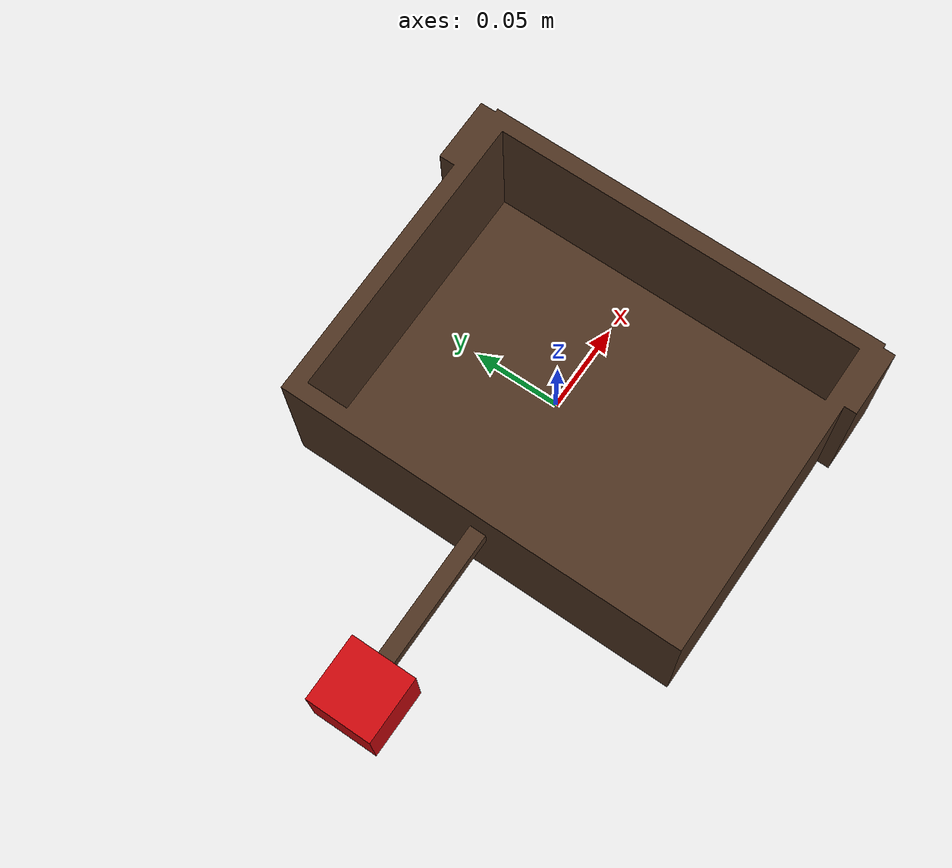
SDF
<sdf version='1.6'>
	<world name='default'>
	<gravity>0 0 -9.8</gravity>
		<model name='part0.obj'>
			<static>1</static>
			<pose frame=''>0 0 0 0 0 0</pose>
			<link name='link_d0'>
			<inertial>
			<mass>0</mass>
			<inertia>
			<ixx>0.166667</ixx>
			<ixy>0</ixy>
			<ixz>0</ixz>
			<iyy>0.166667</iyy>
			<iyz>0</iyz>
			<izz>0.166667</izz>
			</inertia>
			</inertial>
			<collision name='collision_0'>
			<geometry>
			<mesh>
			<scale>1 1 1</scale>
				<uri>part0.obj</uri>
			</mesh>
			</geometry>
			  </collision>
			<visual name='visual'>
				<geometry>
				<mesh>
					<scale>1 1 1</scale>
					<uri>part0.obj</uri>
				</mesh>
				</geometry>
			<material>
				<ambient>1 0 0 1</ambient>
				<diffuse>0.303197 0.199624 0.126394 1.000000</diffuse>
				<specular>0.1 0.1 0.1 1</specular>
				<emissive>0 0 0 0</emissive>
			 </material>
			 </visual>
			 </link>
			</model>
		<model name='part1.obj'>
			<static>1</static>
			<pose frame=''>0 0 0 0 0 0</pose>
			<link name='link_d1'>
			<inertial>
			<mass>0</mass>
			<inertia>
			<ixx>0.166667</ixx>
			<ixy>0</ixy>
			<ixz>0</ixz>
			<iyy>0.166667</iyy>
			<iyz>0</iyz>
			<izz>0.166667</izz>
			</inertia>
			</inertial>
			<collision name='collision_1'>
			<geometry>
			<mesh>
			<scale>1 1 1</scale>
				<uri>part1.obj</uri>
			</mesh>
			</geometry>
			  </collision>
			<visual name='visual'>
				<geometry>
				<mesh>
					<scale>1 1 1</scale>
					<uri>part1.obj</uri>
				</mesh>
				</geometry>
			<material>
				<ambient>1 0 0 1</ambient>
				<diffuse>0.800000 0.030582 0.046169 1.000000</diffuse>
				<specular>0.1 0.1 0.1 1</specular>
				<emissive>0 0 0 0</emissive>
			 </material>
			 </visual>
			 </link>
			</model>
	</world>
</sdf>
